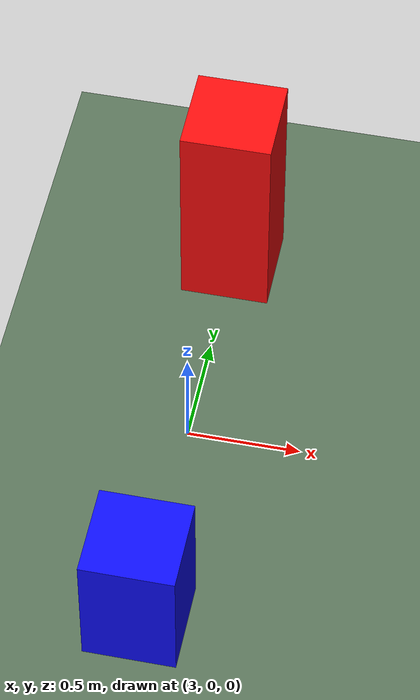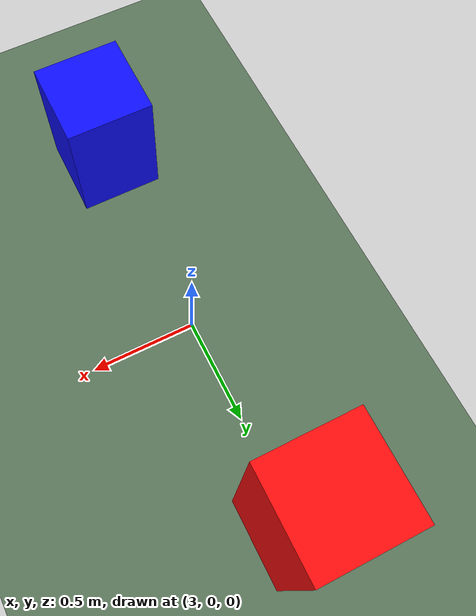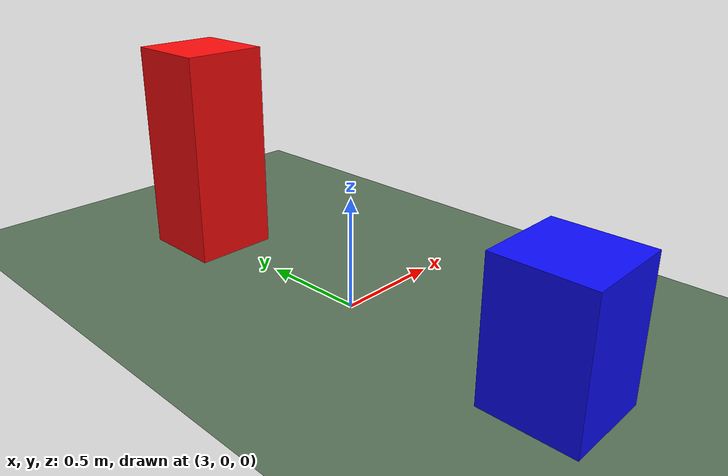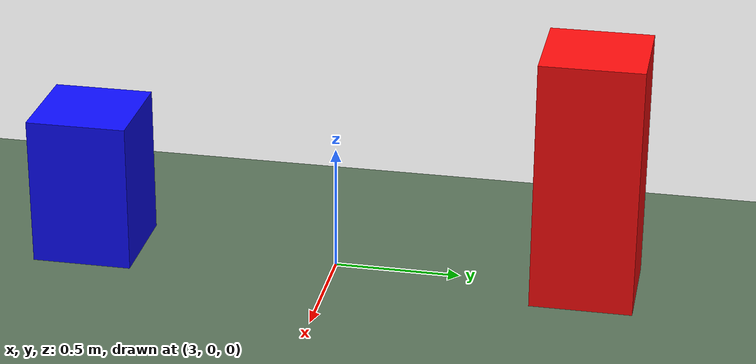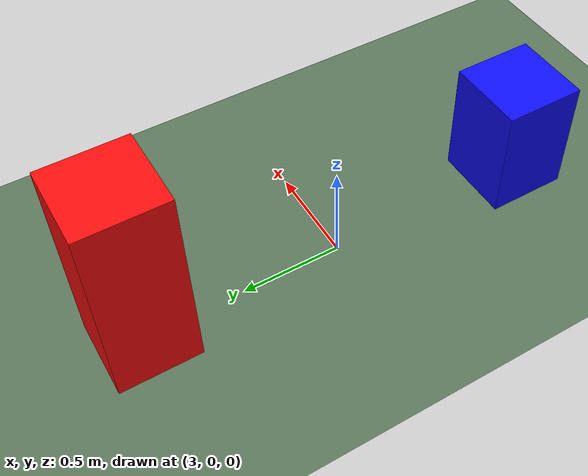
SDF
<?xml version="1.0"?>
<sdf version="1.6"><world name="xtnetrc_flat">
  <gravity>0 0 -9.81</gravity>
  <physics name="ode" type="ode"><max_step_size>0.001</max_step_size><real_time_update_rate>1000</real_time_update_rate><ode><solver><type>quick</type><iters>80</iters><sor>1.0</sor></solver></ode></physics>
  <scene><ambient>0.6 0.6 0.6 1</ambient><background>0.6 0.8 0.95 1</background><shadows>false</shadows></scene>
  <light name="sun" type="directional"><diffuse>0.8 0.8 0.8 1</diffuse><direction>-0.3 0.2 -1</direction></light>
  <model name="ground"><static>true</static><link name="ground"><collision name="ground"><geometry><plane><normal>0 0 1</normal><size>200 200</size></plane></geometry><surface><friction><ode><mu>1</mu><mu2>1</mu2></ode></friction></surface></collision><visual name="ground"><geometry><plane><normal>0 0 1</normal><size>200 200</size></plane></geometry><material><ambient>0.35 0.45 0.35 1</ambient><diffuse>0.35 0.45 0.35 1</diffuse></material></visual></link></model>
  <!-- Asymmetric visual landmarks let image regression detect true pan and tilt. -->
  <model name="red_marker"><static>true</static><pose>3 1 0.5 0 0 0</pose><link name="marker"><collision name="marker"><geometry><box><size>0.4 0.4 1</size></box></geometry></collision><visual name="marker"><geometry><box><size>0.4 0.4 1</size></box></geometry><material><ambient>1 0.05 0.05 1</ambient><diffuse>1 0.05 0.05 1</diffuse></material></visual></link></model>
  <model name="blue_marker"><static>true</static><pose>3 -1 0.3 0 0 0</pose><link name="marker"><collision name="marker"><geometry><box><size>0.4 0.4 0.6</size></box></geometry></collision><visual name="marker"><geometry><box><size>0.4 0.4 0.6</size></box></geometry><material><ambient>0.05 0.05 1 1</ambient><diffuse>0.05 0.05 1 1</diffuse></material></visual></link></model>
  <plugin name="gazebo_state" filename="libgazebo_ros_state.so"><ros><namespace>/gazebo</namespace></ros><update_rate>20</update_rate></plugin>
  <gui><camera name="car_view"><pose>1.2 -1.2 0.9 0 0.45 2.35</pose></camera></gui>
</world></sdf>
